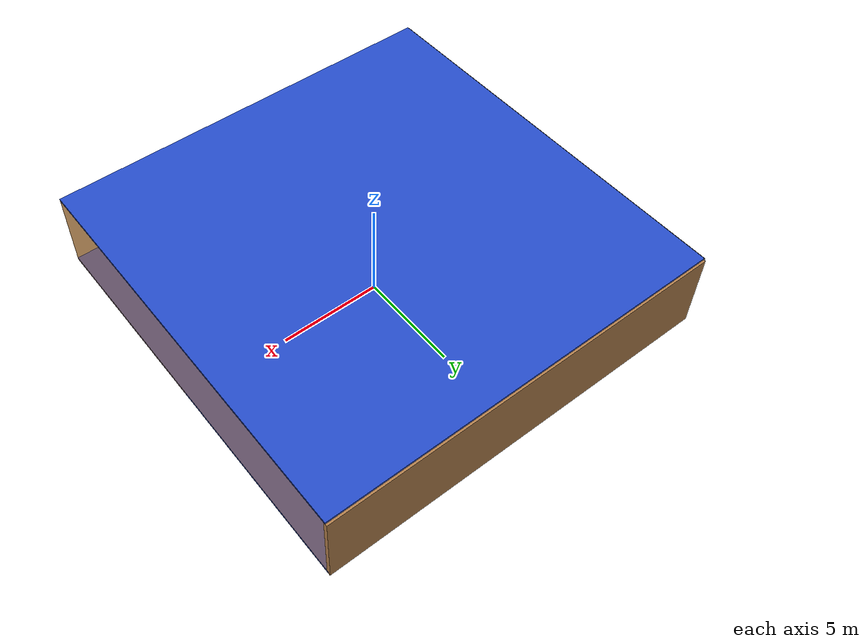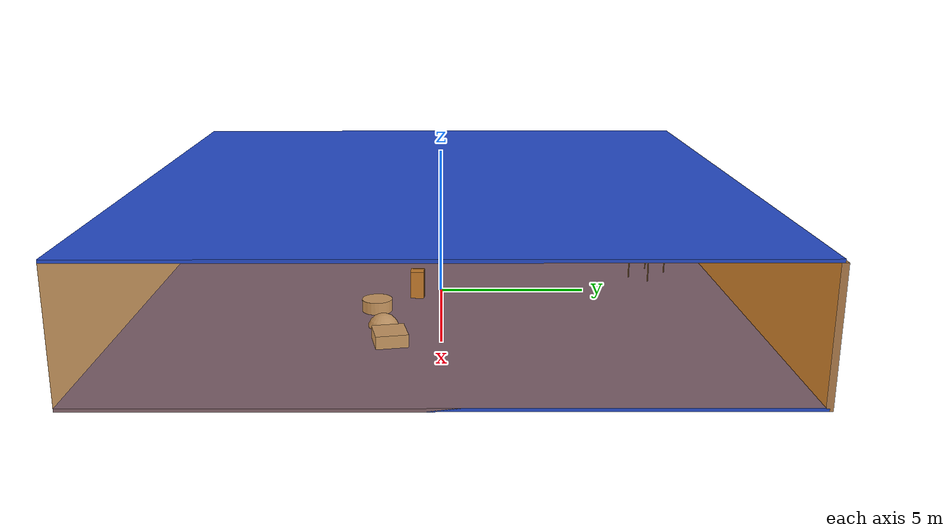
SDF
<sdf version="1.4">
 <world name="default">
  <physics type="ode">
   <max_step_size>0.001</max_step_size>
   <real_time_factor>1</real_time_factor>
   <real_time_update_rate>1000</real_time_update_rate>
   <gravity>0 0 -9.8</gravity>
  </physics>
  <scene><ambient>0.4 0.4 0.4 1</ambient><background>0.7 0.7 0.7 1</background><shadows>1</shadows></scene>
  <model name="Surrounding">
   <static>1</static>
   <link name="Ceiling">
    <collision name="Ceiling_Collision"><geometry><box><size>20 20 0.1</size></box></geometry></collision>
    <visual name="Ceiling_Visual">
     <geometry><box><size>20 20 0.1</size></box></geometry>
     <material>
      <script><uri>file://media/materials/scripts/gazebo.material</uri><name>Gazebo/Blue</name></script>
     </material>
    </visual>
    <pose>0 0 4.05 0 0 0</pose>
   </link>
   <link name="Wall_South">
    <collision name="Wall_South_Collision">
     <geometry><box><size>20 0 4</size></box></geometry>
     <pose>0 0 2 0 -0 0</pose>
    </collision>
    <visual name="Wall_South_Visual">
     <pose>0 0 2 0 -0 0</pose>
     <geometry><box><size>20 0 4</size></box></geometry>
     <material>
      <script><uri>file://media/materials/scripts/gazebo.material</uri><name>Gazebo/White</name></script>
     </material>
    </visual>
    <velocity_decay><linear>0</linear><angular>0</angular></velocity_decay>
    <pose>0 -10 0 0 -0 0</pose>
   </link>
   <link name="Wall_East">
    <collision name="Wall_21_Collision">
     <geometry><box><size>20 0 4</size></box></geometry>
     <pose>0 0 2 0 -0 0</pose>
    </collision>
    <visual name="Wall_21_Visual">
     <pose>0 0 2 0 -0 0</pose>
     <geometry><box><size>20 0 4</size></box></geometry>
     <material>
      <script>
       <uri>file://media/materials/scripts/gazebo.material</uri>
       <name>Gazebo/OrangeTransparent</name>
      </script>
     </material>
    </visual>
    <velocity_decay><linear>0</linear><angular>0</angular></velocity_decay>
    <pose>10 0 0 0 -0 1.5708</pose>
   </link>
   <link name="Wall_North">
    <collision name="Wall_22_Collision">
     <geometry><box><size>20 0.2 4</size></box></geometry>
     <pose>0 0 2 0 -0 0</pose>
    </collision>
    <visual name="Wall_22_Visual">
     <pose>0 0 2 0 -0 0</pose>
     <geometry><box><size>20 0.2 4</size></box></geometry>
     <material>
      <script><uri>file://media/materials/scripts/gazebo.material</uri><name>Gazebo/Wood</name></script>
     </material>
    </visual>
    <velocity_decay><linear>0</linear><angular>0</angular></velocity_decay>
    <pose>0 10 0 0 -0 0</pose>
   </link>
   <link name="Wall_West">
    <collision name="Wall_23_Collision">
     <geometry><box><size>20 0.2 4</size></box></geometry>
     <pose>0 0 2 0 -0 0</pose>
    </collision>
    <visual name="Wall_23_Visual">
     <pose>0 0 2 0 -0 0</pose>
     <geometry><box><size>20 0.2 4</size></box></geometry>
     <material>
      <script><uri>file://media/materials/scripts/gazebo.material</uri><name>Gazebo/Black</name></script>
     </material>
    </visual>
    <velocity_decay><linear>0</linear><angular>0</angular></velocity_decay>
    <pose>-10 0 0 0 0 -1.5708</pose>
   </link>
   <link name="Ground_link">
    <collision name="collision">
     <pose>0 0 .05 0 -0 0</pose>
     <geometry><box><size>20 20 0.1</size></box></geometry>
    </collision>
    <visual name="visual">
     <pose>0 0 .05 0 -0 0</pose>
     <geometry><box><size>20 20 0.1</size></box></geometry>
     <material>
      <script><uri>file://media/materials/scripts/gazebo.material</uri><name>Gazebo/BlueLaser</name></script>
     </material>
    </visual>
   </link>
   <static>1</static>
  </model>
  <spherical_coordinates>
   <surface_model>EARTH_WGS84</surface_model>
   <latitude_deg>0</latitude_deg>
   <longitude_deg>0</longitude_deg>
   <elevation>0</elevation>
   <heading_deg>0</heading_deg>
  </spherical_coordinates>
  <light name="lightball_0" type="diffuse">
   <diffuse>0.8 0.8 0.8 1</diffuse>
   <specular>0.2 0.2 0.2 1</specular>
   <attenuation>
    <range>100</range>
    <constant>0.7</constant>
    <linear>0.01</linear>
    <quadratic>0.001</quadratic>
   </attenuation>
   <direction>-0.5 0.1 -0.9</direction>
   <pose>0.235454345449 9.05726672348 2.86286188409 0 0 0</pose>
  </light>
  <light name="lightball_1" type="diffuse">
   <diffuse>0.8 0.8 0.8 1</diffuse>
   <specular>0.2 0.2 0.2 1</specular>
   <attenuation>
    <range>100</range>
    <constant>0.7</constant>
    <linear>0.01</linear>
    <quadratic>0.001</quadratic>
   </attenuation>
   <direction>-0.5 0.1 -0.9</direction>
   <pose>-1.19584849766 2.16173388761 1.41294054185 0 0 0</pose>
  </light>
  <light name="lightball_2" type="diffuse">
   <diffuse>0.8 0.8 0.8 1</diffuse>
   <specular>0.2 0.2 0.2 1</specular>
   <attenuation>
    <range>100</range>
    <constant>0.7</constant>
    <linear>0.01</linear>
    <quadratic>0.001</quadratic>
   </attenuation>
   <direction>-0.5 0.1 -0.9</direction>
   <pose>-8.21222754507 -8.6134889466 0.831170009687 0 0 0</pose>
  </light>
  <light name="lightball_3" type="diffuse">
   <diffuse>0.8 0.8 0.8 1</diffuse>
   <specular>0.2 0.2 0.2 1</specular>
   <attenuation>
    <range>100</range>
    <constant>0.7</constant>
    <linear>0.01</linear>
    <quadratic>0.001</quadratic>
   </attenuation>
   <direction>-0.5 0.1 -0.9</direction>
   <pose>6.76106536447 4.40249422699 1.29355251376 0 0 0</pose>
  </light>
  <light name="lightball_4" type="diffuse">
   <diffuse>0.8 0.8 0.8 1</diffuse>
   <specular>0.2 0.2 0.2 1</specular>
   <attenuation>
    <range>100</range>
    <constant>0.7</constant>
    <linear>0.01</linear>
    <quadratic>0.001</quadratic>
   </attenuation>
   <direction>-0.5 0.1 -0.9</direction>
   <pose>-8.33687089549 -4.28654964628 2.49653370686 0 0 0</pose>
  </light>
  <light name="lightball_5" type="diffuse">
   <diffuse>0.8 0.8 0.8 1</diffuse>
   <specular>0.2 0.2 0.2 1</specular>
   <attenuation>
    <range>100</range>
    <constant>0.7</constant>
    <linear>0.01</linear>
    <quadratic>0.001</quadratic>
   </attenuation>
   <direction>-0.5 0.1 -0.9</direction>
   <pose>0.0478581834165 -6.74484955086 2.4287220609 0 0 0</pose>
  </light>
  <light name="lightball_6" type="diffuse">
   <diffuse>0.8 0.8 0.8 1</diffuse>
   <specular>0.2 0.2 0.2 1</specular>
   <attenuation>
    <range>100</range>
    <constant>0.7</constant>
    <linear>0.01</linear>
    <quadratic>0.001</quadratic>
   </attenuation>
   <direction>-0.5 0.1 -0.9</direction>
   <pose>1.08625283515 0.309434897807 3.34819744251 0 0 0</pose>
  </light>
  <light name="lightball_7" type="diffuse">
   <diffuse>0.8 0.8 0.8 1</diffuse>
   <specular>0.2 0.2 0.2 1</specular>
   <attenuation>
    <range>100</range>
    <constant>0.7</constant>
    <linear>0.01</linear>
    <quadratic>0.001</quadratic>
   </attenuation>
   <direction>-0.5 0.1 -0.9</direction>
   <pose>5.09467206558 -6.03439873302 1.63891413286 0 0 0</pose>
  </light>
  <include>
   <uri>model://robocup_3Dsim_goal</uri>
   <pose>-7.54608792621 5.17311073179 0 0 0 1.74782093645</pose>
  </include>
  <include>
   <uri>model://textured_shapes</uri>
   <pose>-5.14781408169 4.89647407575 0 0 0 2.74325670826</pose>
  </include>
  <include><uri>model://table</uri><pose>-1.48574390201 7.57749257931 0 0 0 2.49512314331</pose></include>
  <include><uri>model://cabinet</uri><pose>0.951468023416 -0.816844243628 0 0 0 1.5415814527</pose></include>
  <include>
   <uri>model://textured_shapes</uri>
   <pose>3.88145454923 -1.83538840311 0 0 0 1.75670435244</pose>
  </include>
 </world>
</sdf>

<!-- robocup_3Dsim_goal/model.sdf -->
<sdf version="1.5">
  <model name="robocup_3d_goal">
    <static>true</static>
    <link name="left_post">
      <pose>0 1.05 0.45 0 0 0</pose>
      <collision name="collision">
        <geometry>
          <cylinder>
            <radius>0.05</radius>
            <length>0.9</length>
          </cylinder>
        </geometry>
      </collision>
      <visual name="visual">
        <geometry>
          <cylinder>
            <radius>0.05</radius>
            <length>0.9</length>
          </cylinder>
        </geometry>
        <material>
          <script>
            <uri>file://media/materials/scripts/gazebo.material</uri>
            <name>Gazebo/ZincYellow</name>
          </script>
        </material>
      </visual>
    </link>
    <link name="left_support_horiz_lower">
      <pose>0.30 1.05 0.01 0 0 0</pose>
      <collision name="collision">
        <geometry>
          <box>
            <size>0.50 0.02 0.02</size>
          </box>
        </geometry>
      </collision>
      <visual name="visual">
        <geometry>
          <box>
            <size>0.50 0.02 0.02</size>
          </box>
        </geometry>
        <material>
          <script>
            <uri>file://media/materials/scripts/gazebo.material</uri>
            <name>Gazebo/White</name>
          </script>
        </material>
      </visual>
    </link>
    <link name="left_support_horiz_upper">
      <pose>0.30 1.05 0.79 0 0 0</pose>
      <collision name="collision">
        <geometry>
          <box>
            <size>0.50 0.02 0.02</size>
          </box>
        </geometry>
      </collision>
      <visual name="visual">
        <geometry>
          <box>
            <size>0.50 0.02 0.02</size>
          </box>
        </geometry>
        <material>
          <script>
            <uri>file://media/materials/scripts/gazebo.material</uri>
            <name>Gazebo/White</name>
          </script>
        </material>
      </visual>
    </link>
    <link name="left_support_vertical">
      <pose>0.56 1.05 0.4 0 1.5708 0</pose>
      <collision name="collision">
        <geometry>
          <box>
            <size>0.80 0.02 0.02</size>
          </box>
        </geometry>
      </collision>
      <visual name="visual">
        <geometry>
          <box>
            <size>0.80 0.02 0.02</size>
          </box>
        </geometry>
        <material>
          <script>
            <uri>file://media/materials/scripts/gazebo.material</uri>
            <name>Gazebo/White</name>
          </script>
        </material>
      </visual>
    </link>
    <link name="right_support_horiz_lower">
      <pose>0.30 -1.05 0.01 0 0 0</pose>
      <collision name="collision">
        <geometry>
          <box>
            <size>0.50 0.02 0.02</size>
          </box>
        </geometry>
      </collision>
      <visual name="visual">
        <geometry>
          <box>
            <size>0.50 0.02 0.02</size>
          </box>
        </geometry>
        <material>
          <script>
            <uri>file://media/materials/scripts/gazebo.material</uri>
            <name>Gazebo/White</name>
          </script>
        </material>
      </visual>
    </link>
    <link name="right_support_horiz_upper">
      <pose>0.30 -1.05 0.79 0 0 0</pose>
      <collision name="collision">
        <geometry>
          <box>
            <size>0.50 0.02 0.02</size>
          </box>
        </geometry>
      </collision>
      <visual name="visual">
        <geometry>
          <box>
            <size>0.50 0.02 0.02</size>
          </box>
        </geometry>
        <material>
          <script>
            <uri>file://media/materials/scripts/gazebo.material</uri>
            <name>Gazebo/White</name>
          </script>
        </material>
      </visual>
    </link>
    <link name="right_support_vertical">
      <pose>0.56 -1.05 0.4 0 1.5708 0</pose>
      <collision name="collision">
        <geometry>
          <box>
            <size>0.80 0.02 0.02</size>
          </box>
        </geometry>
      </collision>
      <visual name="visual">
        <geometry>
          <box>
            <size>0.80 0.02 0.02</size>
          </box>
        </geometry>
        <material>
          <script>
            <uri>file://media/materials/scripts/gazebo.material</uri>
            <name>Gazebo/White</name>
          </script>
        </material>
      </visual>
    </link>
    <link name="center_support_horiz_lower">
      <pose>0.56 0 0.01 0 1.5708 0</pose>
      <collision name="collision">
        <geometry>
          <box>
            <size>0.02 2.08 0.02</size>
          </box>
        </geometry>
      </collision>
      <visual name="visual">
        <geometry>
          <box>
            <size>0.02 2.08 0.02</size>
          </box>
        </geometry>
        <material>
          <script>
            <uri>file://media/materials/scripts/gazebo.material</uri>
            <name>Gazebo/White</name>
          </script>
        </material>
      </visual>
    </link>
    <link name="center_support_horiz_upper">
      <pose>0.56 0 0.79 0 1.5708 0</pose>
      <collision name="collision">
        <geometry>
          <box>
            <size>0.02 2.08 0.02</size>
          </box>
        </geometry>
      </collision>
      <visual name="visual">
        <geometry>
          <box>
            <size>0.02 2.08 0.02</size>
          </box>
        </geometry>
        <material>
          <script>
            <uri>file://media/materials/scripts/gazebo.material</uri>
            <name>Gazebo/White</name>
          </script>
        </material>
      </visual>
    </link>
    <link name="right_post">
      <pose>0 -1.05 0.45 0 0 0</pose>
      <collision name="collision">
        <geometry>
          <cylinder>
            <radius>0.05</radius>
            <length>0.9</length>
          </cylinder>
        </geometry>
      </collision>
      <visual name="visual">
        <geometry>
          <cylinder>
            <radius>0.05</radius>
            <length>0.9</length>
          </cylinder>
        </geometry>
        <material>
          <script>
            <uri>file://media/materials/scripts/gazebo.material</uri>
            <name>Gazebo/ZincYellow</name>
          </script>
        </material>
      </visual>
    </link>
    <link name="crossbar">
      <pose>0 0 0.85 1.57 1.57 0</pose>
      <collision name="collision">
        <geometry>
          <cylinder>
            <radius>0.05</radius>
            <length>2.0</length>
          </cylinder>
        </geometry>
      </collision>
      <visual name="visual">
        <geometry>
          <cylinder>
            <radius>0.05</radius>
            <length>2.0</length>
          </cylinder>
        </geometry>
        <material>
          <script>
            <uri>file://media/materials/scripts/gazebo.material</uri>
            <name>Gazebo/ZincYellow</name>
          </script>
        </material>
      </visual>
    </link>
    <link name="center_net">
      <pose>0.56 0 0.40 0 0 0</pose>
      <collision name="collision">
        <geometry>
          <box>
            <size>0.01 2.1 0.80</size>
          </box>
        </geometry>
      </collision>
      <visual name="visual">
        <geometry>
          <box>
            <size>0.01 2.1 0.80</size>
          </box>
        </geometry>
        <material>
          <script>
            <uri>model://../model_source/models/robocup09_spl_field/materials/scripts/</uri>
            <uri>model://../model_source/models/robocup09_spl_field/materials/textures/</uri>
            <name>RoboCup/Net</name>
          </script>
        </material>
      </visual>
    </link>
    <link name="left_net">
      <pose>0.30 1.05 0.40 0 0 0</pose>
      <collision name="collision">
        <geometry>
          <box>
            <size>0.50 0.01 0.76</size>
          </box>
        </geometry>
      </collision>
      <visual name="visual">
        <geometry>
          <box>
            <size>0.50 0.01 0.76</size>
          </box>
        </geometry>
        <material>
          <script>
            <uri>model://../model_source/models/robocup09_spl_field/materials/scripts/</uri>
            <uri>model://../model_source/models/robocup09_spl_field/materials/textures/</uri>
            <name>RoboCup/Net</name>
          </script>
        </material>
      </visual>
    </link>
    <link name="right_net">
      <pose>0.30 -1.05 0.40 0 0 0</pose>
      <collision name="collision">
        <geometry>
          <box>
            <size>0.50 0.01 0.76</size>
          </box>
        </geometry>
      </collision>
      <visual name="visual">
        <geometry>
          <box>
            <size>0.50 0.01 0.76</size>
          </box>
        </geometry>
        <material>
          <script>
            <uri>model://../model_source/models/robocup09_spl_field/materials/scripts/</uri>
            <uri>model://../model_source/models/robocup09_spl_field/materials/textures/</uri>
            <name>RoboCup/Net</name>
          </script>
        </material>
      </visual>
    </link>
  </model>
</sdf>

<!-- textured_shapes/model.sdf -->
<sdf version="1.6">
  <model name="textured_shapes">
    <pose>0 0 0.5 0 0 0</pose>
    <link name="box">
      <pose>0 -1.5 0 0 0 0</pose>
      <collision name="collision">
        <geometry>
          <box>
            <size>1 1 1</size>
          </box>
        </geometry>
      </collision>
      <visual name="visual">
        <geometry>
          <box>
            <size>1 1 1</size>
          </box>
        </geometry>
        <material>
          <script>
            <uri>model://../model_source/models/textured_shapes/materials/scripts</uri>
            <uri>model://../model_source/models/textured_shapes/materials/textures</uri>
            <name>TexturedShape/Squares</name>
          </script>
        </material>
      </visual>
    </link>
    <link name="sphere">
      <collision name="collision">
        <geometry>
          <sphere>
            <radius>0.5</radius>
          </sphere>
        </geometry>
      </collision>
      <visual name="visual">
        <geometry>
          <sphere>
            <radius>0.5</radius>
          </sphere>
        </geometry>
        <material>
          <script>
            <uri>model://../model_source/models/textured_shapes/materials/scripts</uri>
            <uri>model://../model_source/models/textured_shapes/materials/textures</uri>
            <name>TexturedShape/Squares</name>
          </script>
        </material>
      </visual>
    </link>
    <link name="cylinder">
      <pose>0 1.5 0 0 0 0</pose>
      <collision name="collision">
        <geometry>
          <cylinder>
            <radius>0.5</radius>
            <length>1</length>
          </cylinder>
        </geometry>
      </collision>
      <visual name="visual">
        <geometry>
          <cylinder>
            <radius>0.5</radius>
            <length>1</length>
          </cylinder>
        </geometry>
        <material>
          <script>
            <uri>model://../model_source/models/textured_shapes/materials/scripts</uri>
            <uri>model://../model_source/models/textured_shapes/materials/textures</uri>
            <name>TexturedShape/Squares</name>
          </script>
        </material>
      </visual>
    </link>
  </model>
</sdf>

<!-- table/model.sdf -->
<sdf version="1.5">
  <model name="table">
    <static>true</static>
    <link name="link">
      <collision name="surface">
        <pose>0 0 1.0 0 0 0</pose>
        <geometry>
          <box>
            <size>1.5 0.8 0.03</size>
          </box>
        </geometry>
        <surface>
          <friction>
            <ode>
              <mu>0.6</mu>
              <mu2>0.6</mu2>
            </ode>
          </friction>
        </surface>
      </collision>
      <visual name="visual1">
        <pose>0 0 1.0 0 0 0</pose>
        <geometry>
          <box>
            <size>1.5 0.8 0.03</size>
          </box>
        </geometry>
        <material>
          <script>
            <uri>model://media/materials/scripts/gazebo.material</uri>
            <name>Gazebo/Wood</name>
          </script>
        </material>
      </visual>
      <collision name="front_left_leg">
        <pose>0.68 0.38 0.5 0 0 0</pose>
        <geometry>
          <cylinder>
            <radius>0.02</radius>
            <length>1.0</length>
          </cylinder>
        </geometry>
      </collision>
      <visual name="front_left_leg">
        <pose>0.68 0.38 0.5 0 0 0</pose>
        <geometry>
          <cylinder>
            <radius>0.02</radius>
            <length>1.0</length>
          </cylinder>
        </geometry>
        <material>
          <script>
            <uri>model://media/materials/scripts/gazebo.material</uri>
            <name>Gazebo/Grey</name>
          </script>
        </material>
      </visual>
      <collision name="front_right_leg">
        <pose>0.68 -0.38 0.5 0 0 0</pose>
        <geometry>
          <cylinder>
            <radius>0.02</radius>
            <length>1.0</length>
          </cylinder>
        </geometry>
      </collision>
      <visual name="front_right_leg">
        <pose>0.68 -0.38 0.5 0 0 0</pose>
        <geometry>
          <cylinder>
            <radius>0.02</radius>
            <length>1.0</length>
          </cylinder>
        </geometry>
        <material>
          <script>
            <uri>model://media/materials/scripts/gazebo.material</uri>
            <name>Gazebo/Grey</name>
          </script>
        </material>
      </visual>
      <collision name="back_right_leg">
        <pose>-0.68 -0.38 0.5 0 0 0</pose>
        <geometry>
          <cylinder>
            <radius>0.02</radius>
            <length>1.0</length>
          </cylinder>
        </geometry>
      </collision>
      <visual name="back_right_leg">
        <pose>-0.68 -0.38 0.5 0 0 0</pose>
        <geometry>
          <cylinder>
            <radius>0.02</radius>
            <length>1.0</length>
          </cylinder>
        </geometry>
        <material>
          <script>
            <uri>model://media/materials/scripts/gazebo.material</uri>
            <name>Gazebo/Grey</name>
          </script>
        </material>
      </visual>
      <collision name="back_left_leg">
        <pose>-0.68 0.38 0.5 0 0 0</pose>
        <geometry>
          <cylinder>
            <radius>0.02</radius>
            <length>1.0</length>
          </cylinder>
        </geometry>
      </collision>
      <visual name="back_left_leg">
        <pose>-0.68 0.38 0.5 0 0 0</pose>
        <geometry>
          <cylinder>
            <radius>0.02</radius>
            <length>1.0</length>
          </cylinder>
        </geometry>
        <material>
          <script>
            <uri>model://media/materials/scripts/gazebo.material</uri>
            <name>Gazebo/Grey</name>
          </script>
        </material>
      </visual>
    </link>
  </model>
</sdf>

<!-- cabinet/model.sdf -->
<sdf version="1.5">
  <model name="cabinet">
    <static>true</static>
    <link name="cabinet_bottom_plate">
      <inertial>
        <pose>0 0 -1 0 0 0</pose>
        <inertia>
          <ixx>2.050000</ixx>
          <ixy>0</ixy>
          <ixz>0</ixz>
          <iyy>2.050000</iyy>
          <iyz>0</iyz>
          <izz>2.050000</izz>
        </inertia>
        <mass>25.000000</mass>
      </inertial>
      <collision name="cabinet_bottom_plate_geom">
        <pose>0 0 0.010000 0 0 0</pose>
        <geometry>
          <box>
            <size>0.450000 0.450000 0.020000</size>
          </box>
        </geometry>
      </collision>
      <visual name="cabinet_bottom_plate_geom_visual">
        <pose>0 0 0.010000 0 0 0</pose>
        <geometry>
          <box>
            <size>0.450000 0.450000 0.020000</size>
          </box>
        </geometry>
        <material>
          <script>
            <uri>model://media/materials/scripts/gazebo.material</uri>
            <name>Gazebo/Wood</name>
          </script>
        </material>
      </visual>
      <collision name="cabinet_bottom_plate_geom_cabinet_back_plate">
        <pose>0.235000 0 0.510000 0 0 0</pose>
        <geometry>
          <box>
            <size>0.020000 0.450000 1.020000</size>
          </box>
        </geometry>
      </collision>
      <visual name="cabinet_bottom_plate_geom_cabinet_back_plate_visual">
        <pose>0.235000 0 0.510000 0 0 0</pose>
        <geometry>
          <box>
            <size>0.020000 0.450000 1.020000</size>
          </box>
        </geometry>
        <material>
          <script>
            <uri>model://media/materials/scripts/gazebo.material</uri>
            <name>Gazebo/Wood</name>
          </script>
        </material>
      </visual>
      <collision name="cabinet_bottom_plate_geom_cabinet_left_plate">
        <pose>0 0.235000 0.510000 0 0 0</pose>
        <geometry>
          <box>
            <size>0.450000 0.020000 1.020000</size>
          </box>
        </geometry>
      </collision>
      <visual name="cabinet_bottom_plate_geom_cabinet_left_plate_visual">
        <pose>0 0.235000 0.510000 0 0 0</pose>
        <geometry>
          <box>
            <size>0.450000 0.020000 1.020000</size>
          </box>
        </geometry>
        <material>
          <script>
            <uri>model://media/materials/scripts/gazebo.material</uri>
            <name>Gazebo/Wood</name>
          </script>
        </material>
      </visual>
      <collision name="cabinet_bottom_plate_geom_cabinet_middle_plate">
        <pose>0 0 0.510000 0 0 0</pose>
        <geometry>
          <box>
            <size>0.450000 0.450000 0.020000</size>
          </box>
        </geometry>
      </collision>
      <visual name="cabinet_bottom_plate_geom_cabinet_middle_plate_visual">
        <pose>0 0 0.510000 0 0 0</pose>
        <geometry>
          <box>
            <size>0.450000 0.450000 0.020000</size>
          </box>
        </geometry>
        <material>
          <script>
            <uri>model://media/materials/scripts/gazebo.material</uri>
            <name>Gazebo/Wood</name>
          </script>
        </material>
      </visual>
      <collision name="cabinet_bottom_plate_geom_cabinet_right_plate">
        <pose>0 -0.235000 0.510000 0 0 0</pose>
        <geometry>
          <box>
            <size>0.450000 0.020000 1.020000</size>
          </box>
        </geometry>
      </collision>
      <visual name="cabinet_bottom_plate_geom_cabinet_right_plate_visual">
        <pose>0 -0.235000 0.510000 0 0 0</pose>
        <geometry>
          <box>
            <size>0.450000 0.020000 1.020000</size>
          </box>
        </geometry>
        <material>
          <script>
            <uri>model://media/materials/scripts/gazebo.material</uri>
            <name>Gazebo/Wood</name>
          </script>
        </material>
      </visual>
      <collision name="cabinet_bottom_plate_geom_cabinet_top_plate">
        <pose>0 0 1.010000 0 0 0</pose>
        <geometry>
          <box>
            <size>0.450000 0.450000 0.020000</size>
          </box>
        </geometry>
      </collision>
      <visual name="cabinet_bottom_plate_geom_cabinet_top_plate_visual">
        <pose>0 0 1.010000 0 0 0</pose>
        <geometry>
          <box>
            <size>0.450000 0.450000 0.020000</size>
          </box>
        </geometry>
        <material>
          <script>
            <uri>model://media/materials/scripts/gazebo.material</uri>
            <name>Gazebo/Wood</name>
          </script>
        </material>
      </visual>
    </link>
  </model>
</sdf>
